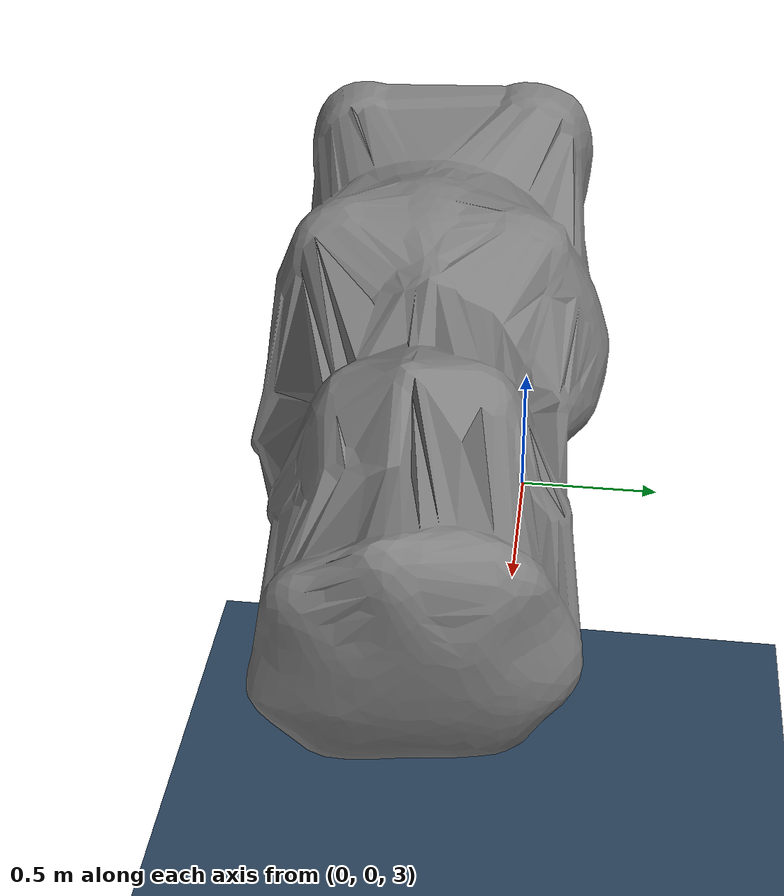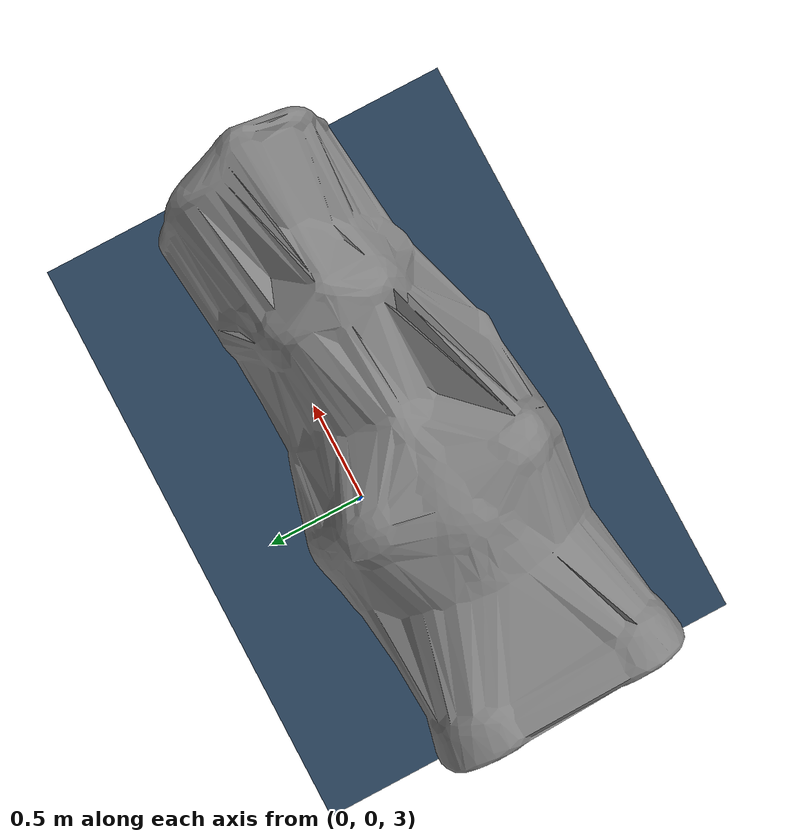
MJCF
<mujoco model="RM65-6F">
    <compiler angle="radian" />
    <asset>
        <texture name="grid" type="2d" builtin="checker" rgb1=".1 .2 .3" rgb2=".2 .3 .4" width="3000" height="3000" />
        <material name="grid" texture="grid" texrepeat="1 1" texuniform="true" />
        <material name="arm_material" rgba="0.8 0.6 0.4 1" />

        <mesh name="your_mesh" file="point_cloud.obj" scale="0.01 0.01 0.01" />
    </asset>
    <worldbody>

        <light diffuse=".5 .5 .5" pos="0 0 100" dir="0 0 -1" />

        <geom type="plane" size="10 10 1" pos="0 0 0" material="grid" />

        <body name="body1" pos="0 0 10">
            <geom type="mesh" mesh="your_mesh" />
        </body>
    </worldbody>
</mujoco>
